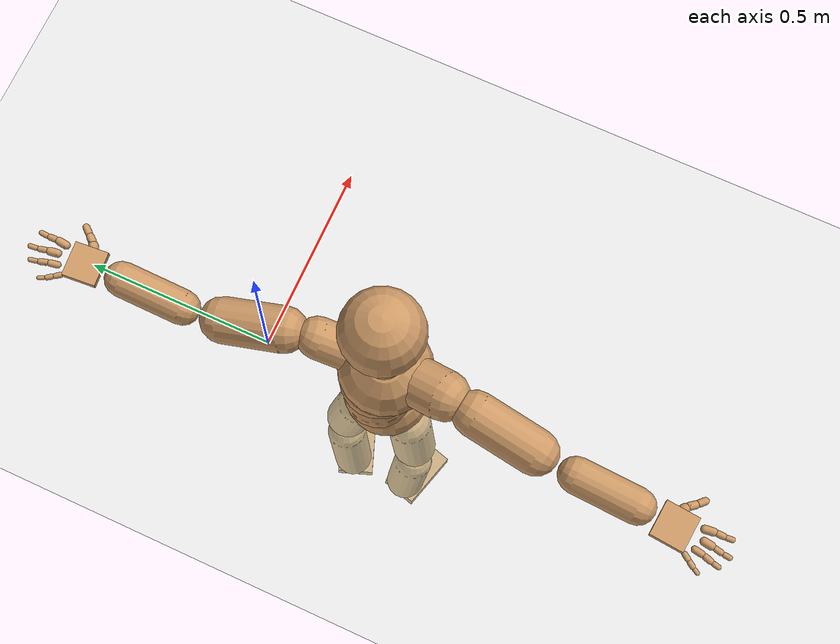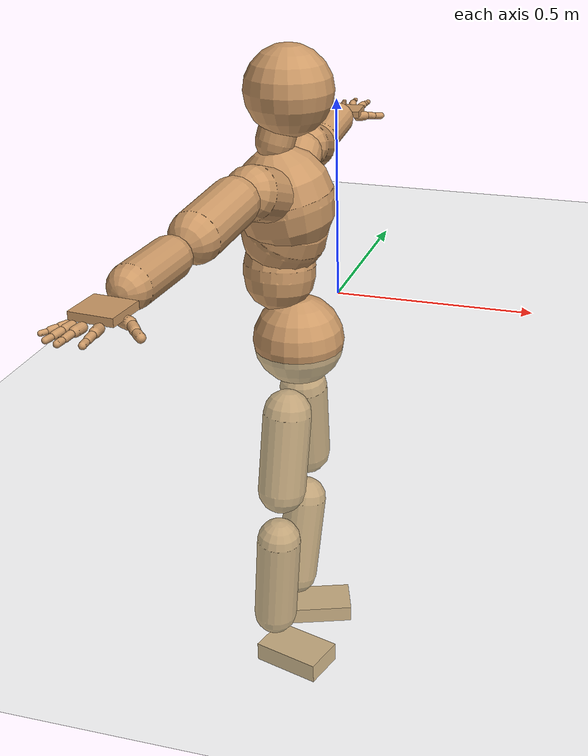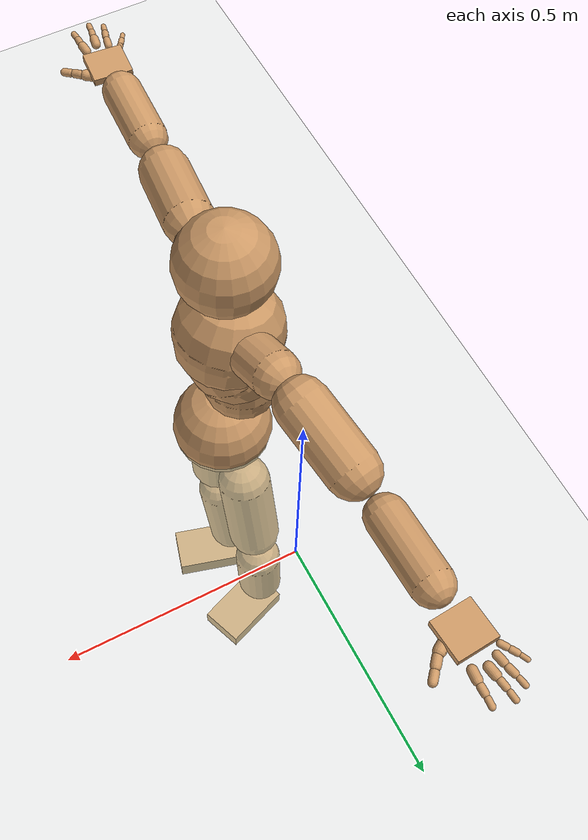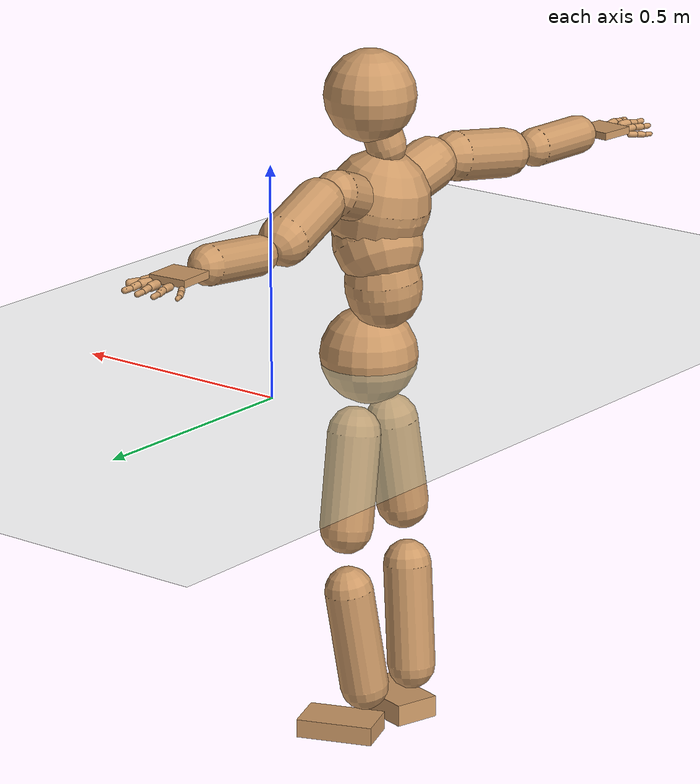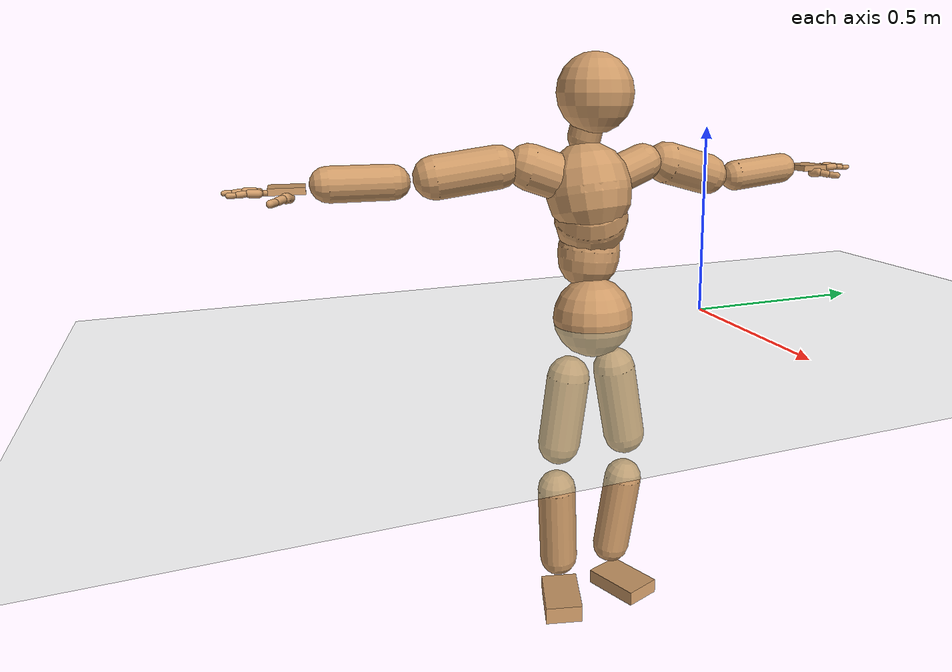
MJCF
<mujoco model="humanoid">
  <compiler coordinate="local" angle="radian"/>
  <default>
    <joint damping="0.0" armature="0.01" stiffness="0.0" limited="true"/>
    <geom conaffinity="1" condim="3" contype="7" margin="0.001" rgba="0.8 0.6 .4 1"/>
  </default>
  <asset>
    <texture type="skybox" builtin="gradient" rgb1=".4 .5 .6" rgb2="0 0 0" width="100" height="100"/>
    <texture builtin="flat" height="1278" mark="cross" markrgb="1 1 1" name="texgeom" random="0.01" rgb1="0.8 0.6 0.4" rgb2="0.8 0.6 0.4" type="cube" width="127"/>
    <texture builtin="checker" height="100" name="texplane" rgb1="0 0 0" rgb2="0.8 0.8 0.8" type="2d" width="100"/>
    <material name="MatPlane" reflectance="0.5" shininess="1" specular="1" texrepeat="60 60" texture="texplane"/>
    <material name="geom" texture="texgeom" texuniform="true"/>
  </asset>
  <worldbody>
    <light cutoff="100" diffuse="1 1 1" dir="-0 0 -1.3" directional="true" exponent="1" pos="0 0 1.3" specular=".1 .1 .1"/>
    <geom conaffinity="1" condim="3" name="floor" pos="0 0 0" rgba="0.8 0.9 0.8 1" size="100 100 .2" type="plane" material="MatPlane"/>
    <body name="Pelvis" pos="0.0017 -0.3304 0.0149">
      <freejoint name="Pelvis"/>
      <geom type="sphere" contype="1" conaffinity="1" density="500" size="0.1068" pos="0.0000 0.0000 0.0000" name="Pelvis"/>
      <body name="L_Hip" pos="-0.0126 0.058 -0.0886">
        <joint name="L_Hip_x" type="hinge" pos="0 0 0" axis="1 0 0" stiffness="800" damping="80" armature="0.02" range="-180.0000 180.0000"/>
        <joint name="L_Hip_y" type="hinge" pos="0 0 0" axis="0 1 0" stiffness="800" damping="80" armature="0.02" range="-180.0000 180.0000"/>
        <joint name="L_Hip_z" type="hinge" pos="0 0 0" axis="0 0 1" stiffness="800" damping="80" armature="0.02" range="-180.0000 180.0000"/>
        <geom type="capsule" contype="1" conaffinity="1" density="500" fromto="-0.0020 0.0117 -0.0680 -0.0079 0.0469 -0.2720" size="0.0578" name="L_Hip"/>
        <body name="L_Knee" pos="-0.0098 0.0587 -0.34">
          <joint name="L_Knee_x" type="hinge" pos="0 0 0" axis="1 0 0" stiffness="800" damping="80" armature="0.02" range="-180.0000 180.0000"/>
          <joint name="L_Knee_y" type="hinge" pos="0 0 0" axis="0 1 0" stiffness="800" damping="80" armature="0.02" range="-180.0000 180.0000"/>
          <joint name="L_Knee_z" type="hinge" pos="0 0 0" axis="0 0 1" stiffness="800" damping="80" armature="0.02" range="-180.0000 180.0000"/>
          <geom type="capsule" contype="1" conaffinity="1" density="500" fromto="-0.0068 -0.0094 -0.0747 -0.0272 -0.0375 -0.2988" size="0.0533" name="L_Knee"/>
          <body name="L_Ankle" pos="-0.034 -0.0469 -0.3735">
            <joint name="L_Ankle_x" type="hinge" pos="0 0 0" axis="1 0 0" stiffness="800" damping="80" armature="0.02" range="-180.0000 180.0000"/>
            <joint name="L_Ankle_y" type="hinge" pos="0 0 0" axis="0 1 0" stiffness="800" damping="80" armature="0.02" range="-180.0000 180.0000"/>
            <joint name="L_Ankle_z" type="hinge" pos="0 0 0" axis="0 0 1" stiffness="800" damping="80" armature="0.02" range="-180.0000 180.0000"/>
            <geom type="box" contype="1" conaffinity="1" density="500" pos="0.0618 0.0230 -0.0271" size="0.085 0.0513 0.0205" quat="0.9842 0.0000 0.0000 0.1773" name="L_Ankle"/>
            <body name="L_Toe" pos="0.1236 0.046 -0.0543">
              <joint name="L_Toe_x" type="hinge" pos="0 0 0" axis="1 0 0" stiffness="500" damping="50" armature="0.02" range="-180.0000 180.0000"/>
              <joint name="L_Toe_y" type="hinge" pos="0 0 0" axis="0 1 0" stiffness="500" damping="50" armature="0.02" range="-180.0000 180.0000"/>
              <joint name="L_Toe_z" type="hinge" pos="0 0 0" axis="0 0 1" stiffness="500" damping="50" armature="0.02" range="-180.0000 180.0000"/>
              <geom type="box" contype="1" conaffinity="1" density="500" pos="0.0000 0.0000 0.0280" size="0.001 0.0024 0.0011" quat="0.9834 0.0000 0.0000 0.1816" name="L_Toe"/>
            </body>
          </body>
        </body>
      </body>
      <body name="R_Hip" pos="-0.0063 -0.0597 -0.0988">
        <joint name="R_Hip_x" type="hinge" pos="0 0 0" axis="1 0 0" stiffness="800" damping="80" armature="0.02" range="-180.0000 180.0000"/>
        <joint name="R_Hip_y" type="hinge" pos="0 0 0" axis="0 1 0" stiffness="800" damping="80" armature="0.02" range="-180.0000 180.0000"/>
        <joint name="R_Hip_z" type="hinge" pos="0 0 0" axis="0 0 1" stiffness="800" damping="80" armature="0.02" range="-180.0000 180.0000"/>
        <geom type="capsule" contype="1" conaffinity="1" density="500" fromto="-0.0034 -0.0087 -0.0650 -0.0137 -0.0346 -0.2600" size="0.0576" name="R_Hip"/>
        <body name="R_Knee" pos="-0.0171 -0.0433 -0.325">
          <joint name="R_Knee_x" type="hinge" pos="0 0 0" axis="1 0 0" stiffness="800" damping="80" armature="0.02" range="-180.0000 180.0000"/>
          <joint name="R_Knee_y" type="hinge" pos="0 0 0" axis="0 1 0" stiffness="800" damping="80" armature="0.02" range="-180.0000 180.0000"/>
          <joint name="R_Knee_z" type="hinge" pos="0 0 0" axis="0 0 1" stiffness="800" damping="80" armature="0.02" range="-180.0000 180.0000"/>
          <geom type="capsule" contype="1" conaffinity="1" density="500" fromto="-0.0067 0.0036 -0.0770 -0.0267 0.0142 -0.3079" size="0.0532" name="R_Knee"/>
          <body name="R_Ankle" pos="-0.0334 0.0178 -0.3849">
            <joint name="R_Ankle_x" type="hinge" pos="0 0 0" axis="1 0 0" stiffness="800" damping="80" armature="0.02" range="-180.0000 180.0000"/>
            <joint name="R_Ankle_y" type="hinge" pos="0 0 0" axis="0 1 0" stiffness="800" damping="80" armature="0.02" range="-180.0000 180.0000"/>
            <joint name="R_Ankle_z" type="hinge" pos="0 0 0" axis="0 0 1" stiffness="800" damping="80" armature="0.02" range="-180.0000 180.0000"/>
            <geom type="box" contype="1" conaffinity="1" density="500" pos="0.0653 -0.0185 -0.0266" size="0.085 0.0513 0.0242" quat="0.9904 0.0000 0.0000 -0.1380" name="R_Ankle"/>
            <body name="R_Toe" pos="0.1305 -0.0371 -0.0533">
              <joint name="R_Toe_x" type="hinge" pos="0 0 0" axis="1 0 0" stiffness="500" damping="50" armature="0.02" range="-180.0000 180.0000"/>
              <joint name="R_Toe_y" type="hinge" pos="0 0 0" axis="0 1 0" stiffness="500" damping="50" armature="0.02" range="-180.0000 180.0000"/>
              <joint name="R_Toe_z" type="hinge" pos="0 0 0" axis="0 0 1" stiffness="500" damping="50" armature="0.02" range="-180.0000 180.0000"/>
              <geom type="box" contype="1" conaffinity="1" density="500" pos="0.0000 0.0000 0.0237" size="0.001 0.0024 0.0011" quat="0.9916 0.0000 0.0000 -0.1290" name="R_Toe"/>
            </body>
          </body>
        </body>
      </body>
      <body name="Torso" pos="-0.0457 0 0.0994">
        <joint name="Torso_x" type="hinge" pos="0 0 0" axis="1 0 0" stiffness="1000" damping="100" armature="0.02" range="-180.0000 180.0000"/>
        <joint name="Torso_y" type="hinge" pos="0 0 0" axis="0 1 0" stiffness="1000" damping="100" armature="0.02" range="-180.0000 180.0000"/>
        <joint name="Torso_z" type="hinge" pos="0 0 0" axis="0 0 1" stiffness="1000" damping="100" armature="0.02" range="-180.0000 180.0000"/>
        <geom type="capsule" contype="1" conaffinity="1" density="500" fromto="0.0021 0.0077 0.0801 0.0014 0.0051 0.0534" size="0.083" name="Torso"/>
        <body name="Spine" pos="0.0034 0.0129 0.1334">
          <joint name="Spine_x" type="hinge" pos="0 0 0" axis="1 0 0" stiffness="1000" damping="100" armature="0.02" range="-180.0000 180.0000"/>
          <joint name="Spine_y" type="hinge" pos="0 0 0" axis="0 1 0" stiffness="1000" damping="100" armature="0.02" range="-180.0000 180.0000"/>
          <joint name="Spine_z" type="hinge" pos="0 0 0" axis="0 0 1" stiffness="1000" damping="100" armature="0.02" range="-180.0000 180.0000"/>
          <geom type="capsule" contype="1" conaffinity="1" density="500" fromto="0.0169 -0.0072 0.0315 0.0112 -0.0048 0.0210" size="0.0973" name="Spine"/>
          <body name="Chest" pos="0.0281 -0.012 0.0525">
            <joint name="Chest_x" type="hinge" pos="0 0 0" axis="1 0 0" stiffness="1000" damping="100" armature="0.02" range="-180.0000 180.0000"/>
            <joint name="Chest_y" type="hinge" pos="0 0 0" axis="0 1 0" stiffness="1000" damping="100" armature="0.02" range="-180.0000 180.0000"/>
            <joint name="Chest_z" type="hinge" pos="0 0 0" axis="0 0 1" stiffness="1000" damping="100" armature="0.02" range="-180.0000 180.0000"/>
            <geom type="capsule" contype="1" conaffinity="1" density="500" fromto="-0.0107 -0.0038 0.0585 -0.0071 -0.0025 0.0390" size="0.1119" name="Chest"/>
            <body name="Neck" pos="-0.0341 -0.0117 0.1519">
              <joint name="Neck_x" type="hinge" pos="0 0 0" axis="1 0 0" stiffness="500" damping="50" armature="0.02" range="-180.0000 180.0000"/>
              <joint name="Neck_y" type="hinge" pos="0 0 0" axis="0 1 0" stiffness="500" damping="50" armature="0.02" range="-180.0000 180.0000"/>
              <joint name="Neck_z" type="hinge" pos="0 0 0" axis="0 0 1" stiffness="500" damping="50" armature="0.02" range="-180.0000 180.0000"/>
              <geom type="capsule" contype="1" conaffinity="1" density="500" fromto="0.0071 0.0047 0.0272 0.0282 0.0190 0.1089" size="0.0431" name="Neck"/>
              <body name="Head" pos="0.0353 0.0237 0.1361">
                <joint name="Head_x" type="hinge" pos="0 0 0" axis="1 0 0" stiffness="500" damping="50" armature="0.02" range="-180.0000 180.0000"/>
                <joint name="Head_y" type="hinge" pos="0 0 0" axis="0 1 0" stiffness="500" damping="50" armature="0.02" range="-180.0000 180.0000"/>
                <joint name="Head_z" type="hinge" pos="0 0 0" axis="0 0 1" stiffness="500" damping="50" armature="0.02" range="-180.0000 180.0000"/>
                <geom type="sphere" contype="1" conaffinity="1" density="500" size="0.0992" pos="0.0000 0.0000 0.0000" name="Head"/>
              </body>
            </body>
            <body name="L_Thorax" pos="-0.0085 0.0432 0.0697">
              <joint name="L_Thorax_x" type="hinge" pos="0 0 0" axis="1 0 0" stiffness="500" damping="50" armature="0.02" range="-180.0000 180.0000"/>
              <joint name="L_Thorax_y" type="hinge" pos="0 0 0" axis="0 1 0" stiffness="500" damping="50" armature="0.02" range="-180.0000 180.0000"/>
              <joint name="L_Thorax_z" type="hinge" pos="0 0 0" axis="0 0 1" stiffness="500" damping="50" armature="0.02" range="-180.0000 180.0000"/>
              <geom type="capsule" contype="1" conaffinity="1" density="500" fromto="-0.0039 0.0288 0.0101 -0.0155 0.1153 0.0405" size="0.0501" name="L_Thorax"/>
              <body name="L_Shoulder" pos="-0.0193 0.1441 0.0506">
                <joint name="L_Shoulder_x" type="hinge" pos="0 0 0" axis="1 0 0" stiffness="500" damping="50" armature="0.02" range="-180.0000 180.0000"/>
                <joint name="L_Shoulder_y" type="hinge" pos="0 0 0" axis="0 1 0" stiffness="500" damping="50" armature="0.02" range="-180.0000 180.0000"/>
                <joint name="L_Shoulder_z" type="hinge" pos="0 0 0" axis="0 0 1" stiffness="500" damping="50" armature="0.02" range="-180.0000 180.0000"/>
                <geom type="capsule" contype="1" conaffinity="1" density="500" fromto="-0.0094 0.0484 -0.0133 -0.0377 0.1936 -0.0531" size="0.0552" name="L_Shoulder"/>
                <body name="L_Elbow" pos="-0.0471 0.242 -0.0663">
                  <joint name="L_Elbow_x" type="hinge" pos="0 0 0" axis="1 0 0" stiffness="500" damping="50" armature="0.02" range="-720.0000 720.0000"/>
                  <joint name="L_Elbow_y" type="hinge" pos="0 0 0" axis="0 1 0" stiffness="500" damping="50" armature="0.02" range="-720.0000 720.0000"/>
                  <joint name="L_Elbow_z" type="hinge" pos="0 0 0" axis="0 0 1" stiffness="500" damping="50" armature="0.02" range="-720.0000 720.0000"/>
                  <geom type="capsule" contype="1" conaffinity="1" density="500" fromto="-0.0003 0.0511 0.0051 -0.0011 0.2045 0.0203" size="0.0422" name="L_Elbow"/>
                  <body name="L_Wrist" pos="-0.0014 0.2556 0.0254">
                    <joint name="L_Wrist_x" type="hinge" pos="0 0 0" axis="1 0 0" stiffness="300" damping="30" armature="0.02" range="-180.0000 180.0000"/>
                    <joint name="L_Wrist_y" type="hinge" pos="0 0 0" axis="0 1 0" stiffness="300" damping="30" armature="0.02" range="-180.0000 180.0000"/>
                    <joint name="L_Wrist_z" type="hinge" pos="0 0 0" axis="0 0 1" stiffness="300" damping="30" armature="0.02" range="-180.0000 180.0000"/>
                    <geom type="box" contype="1" conaffinity="1" density="500" pos="-0.0033 0.0426 -0.0057" size="0.0413 0.0427 0.0081" quat="0.7341 0.0000 0.0000 -0.6791" name="L_Wrist"/>
                    <body name="L_Index1" pos="0.0197 0.0996 -0.008">
                      <joint name="L_Index1_x" type="hinge" pos="0 0 0" axis="1 0 0" stiffness="100" damping="10" armature="0.02" range="-180.0000 180.0000"/>
                      <joint name="L_Index1_y" type="hinge" pos="0 0 0" axis="0 1 0" stiffness="100" damping="10" armature="0.02" range="-180.0000 180.0000"/>
                      <joint name="L_Index1_z" type="hinge" pos="0 0 0" axis="0 0 1" stiffness="100" damping="10" armature="0.02" range="-180.0000 180.0000"/>
                      <geom type="capsule" contype="1" conaffinity="1" density="500" fromto="0.0007 0.0063 0.0003 0.0027 0.0254 0.0014" size="0.0097" name="L_Index1"/>
                      <body name="L_Index2" pos="0.0034 0.0317 0.0017">
                        <joint name="L_Index2_x" type="hinge" pos="0 0 0" axis="1 0 0" stiffness="100" damping="10" armature="0.02" range="-180.0000 180.0000"/>
                        <joint name="L_Index2_y" type="hinge" pos="0 0 0" axis="0 1 0" stiffness="100" damping="10" armature="0.02" range="-180.0000 180.0000"/>
                        <joint name="L_Index2_z" type="hinge" pos="0 0 0" axis="0 0 1" stiffness="100" damping="10" armature="0.02" range="-180.0000 180.0000"/>
                        <geom type="capsule" contype="1" conaffinity="1" density="500" fromto="-0.0001 0.0044 -0.0005 -0.0003 0.0178 -0.0020" size="0.0077" name="L_Index2"/>
                        <body name="L_Index3" pos="-0.0004 0.0222 -0.0025">
                          <joint name="L_Index3_x" type="hinge" pos="0 0 0" axis="1 0 0" stiffness="100" damping="10" armature="0.02" range="-180.0000 180.0000"/>
                          <joint name="L_Index3_y" type="hinge" pos="0 0 0" axis="0 1 0" stiffness="100" damping="10" armature="0.02" range="-180.0000 180.0000"/>
                          <joint name="L_Index3_z" type="hinge" pos="0 0 0" axis="0 0 1" stiffness="100" damping="10" armature="0.02" range="-180.0000 180.0000"/>
                          <geom type="capsule" contype="1" conaffinity="1" density="500" fromto="0.0003 0.0048 -0.0001 0.0013 0.0194 -0.0004" size="0.0065" name="L_Index3"/>
                        </body>
                      </body>
                    </body>
                    <body name="L_Middle1" pos="-0.005 0.1078 -0.0055">
                      <joint name="L_Middle1_x" type="hinge" pos="0 0 0" axis="1 0 0" stiffness="100" damping="10" armature="0.02" range="-180.0000 180.0000"/>
                      <joint name="L_Middle1_y" type="hinge" pos="0 0 0" axis="0 1 0" stiffness="100" damping="10" armature="0.02" range="-180.0000 180.0000"/>
                      <joint name="L_Middle1_z" type="hinge" pos="0 0 0" axis="0 0 1" stiffness="100" damping="10" armature="0.02" range="-180.0000 180.0000"/>
                      <geom type="capsule" contype="1" conaffinity="1" density="500" fromto="-0.0009 0.0061 0.0001 -0.0036 0.0243 0.0004" size="0.0098" name="L_Middle1"/>
                      <body name="L_Middle2" pos="-0.0045 0.0304 0.0005">
                        <joint name="L_Middle2_x" type="hinge" pos="0 0 0" axis="1 0 0" stiffness="100" damping="10" armature="0.02" range="-180.0000 180.0000"/>
                        <joint name="L_Middle2_y" type="hinge" pos="0 0 0" axis="0 1 0" stiffness="100" damping="10" armature="0.02" range="-180.0000 180.0000"/>
                        <joint name="L_Middle2_z" type="hinge" pos="0 0 0" axis="0 0 1" stiffness="100" damping="10" armature="0.02" range="-180.0000 180.0000"/>
                        <geom type="capsule" contype="1" conaffinity="1" density="500" fromto="-0.0009 0.0046 -0.0005 -0.0035 0.0184 -0.0019" size="0.0072" name="L_Middle2"/>
                        <body name="L_Middle3" pos="-0.0044 0.023 -0.0023">
                          <joint name="L_Middle3_x" type="hinge" pos="0 0 0" axis="1 0 0" stiffness="100" damping="10" armature="0.02" range="-180.0000 180.0000"/>
                          <joint name="L_Middle3_y" type="hinge" pos="0 0 0" axis="0 1 0" stiffness="100" damping="10" armature="0.02" range="-180.0000 180.0000"/>
                          <joint name="L_Middle3_z" type="hinge" pos="0 0 0" axis="0 0 1" stiffness="100" damping="10" armature="0.02" range="-180.0000 180.0000"/>
                          <geom type="capsule" contype="1" conaffinity="1" density="500" fromto="-0.0005 0.0050 -0.0001 -0.0019 0.0200 -0.0003" size="0.0062" name="L_Middle3"/>
                        </body>
                      </body>
                    </body>
                    <body name="L_Pinky1" pos="-0.0454 0.0835 -0.0148">
                      <joint name="L_Pinky1_x" type="hinge" pos="0 0 0" axis="1 0 0" stiffness="100" damping="10" armature="0.02" range="-180.0000 180.0000"/>
                      <joint name="L_Pinky1_y" type="hinge" pos="0 0 0" axis="0 1 0" stiffness="100" damping="10" armature="0.02" range="-180.0000 180.0000"/>
                      <joint name="L_Pinky1_z" type="hinge" pos="0 0 0" axis="0 0 1" stiffness="100" damping="10" armature="0.02" range="-180.0000 180.0000"/>
                      <geom type="capsule" contype="1" conaffinity="1" density="500" fromto="-0.0023 0.0033 -0.0003 -0.0093 0.0133 -0.0013" size="0.0069" name="L_Pinky1"/>
                      <body name="L_Pinky2" pos="-0.0116 0.0166 -0.0016">
                        <joint name="L_Pinky2_x" type="hinge" pos="0 0 0" axis="1 0 0" stiffness="100" damping="10" armature="0.02" range="-180.0000 180.0000"/>
                        <joint name="L_Pinky2_y" type="hinge" pos="0 0 0" axis="0 1 0" stiffness="100" damping="10" armature="0.02" range="-180.0000 180.0000"/>
                        <joint name="L_Pinky2_z" type="hinge" pos="0 0 0" axis="0 0 1" stiffness="100" damping="10" armature="0.02" range="-180.0000 180.0000"/>
                        <geom type="capsule" contype="1" conaffinity="1" density="500" fromto="-0.0021 0.0032 -0.0004 -0.0085 0.0129 -0.0015" size="0.0066" name="L_Pinky2"/>
                        <body name="L_Pinky3" pos="-0.0106 0.0161 -0.0019">
                          <joint name="L_Pinky3_x" type="hinge" pos="0 0 0" axis="1 0 0" stiffness="100" damping="10" armature="0.02" range="-180.0000 180.0000"/>
                          <joint name="L_Pinky3_y" type="hinge" pos="0 0 0" axis="0 1 0" stiffness="100" damping="10" armature="0.02" range="-180.0000 180.0000"/>
                          <joint name="L_Pinky3_z" type="hinge" pos="0 0 0" axis="0 0 1" stiffness="100" damping="10" armature="0.02" range="-180.0000 180.0000"/>
                          <geom type="capsule" contype="1" conaffinity="1" density="500" fromto="-0.0017 0.0036 0.0000 -0.0069 0.0145 0.0001" size="0.0049" name="L_Pinky3"/>
                        </body>
                      </body>
                    </body>
                    <body name="L_Ring1" pos="-0.0291 0.0964 -0.009">
                      <joint name="L_Ring1_x" type="hinge" pos="0 0 0" axis="1 0 0" stiffness="100" damping="10" armature="0.02" range="-180.0000 180.0000"/>
                      <joint name="L_Ring1_y" type="hinge" pos="0 0 0" axis="0 1 0" stiffness="100" damping="10" armature="0.02" range="-180.0000 180.0000"/>
                      <joint name="L_Ring1_z" type="hinge" pos="0 0 0" axis="0 0 1" stiffness="100" damping="10" armature="0.02" range="-180.0000 180.0000"/>
                      <geom type="capsule" contype="1" conaffinity="1" density="500" fromto="-0.0010 0.0056 0.0001 -0.0040 0.0226 0.0004" size="0.0083" name="L_Ring1"/>
                      <body name="L_Ring2" pos="-0.005 0.0282 0.0005">
                        <joint name="L_Ring2_x" type="hinge" pos="0 0 0" axis="1 0 0" stiffness="100" damping="10" armature="0.02" range="-180.0000 180.0000"/>
                        <joint name="L_Ring2_y" type="hinge" pos="0 0 0" axis="0 1 0" stiffness="100" damping="10" armature="0.02" range="-180.0000 180.0000"/>
                        <joint name="L_Ring2_z" type="hinge" pos="0 0 0" axis="0 0 1" stiffness="100" damping="10" armature="0.02" range="-180.0000 180.0000"/>
                        <geom type="capsule" contype="1" conaffinity="1" density="500" fromto="-0.0013 0.0045 -0.0005 -0.0053 0.0182 -0.0018" size="0.0077" name="L_Ring2"/>
                        <body name="L_Ring3" pos="-0.0067 0.0227 -0.0023">
                          <joint name="L_Ring3_x" type="hinge" pos="0 0 0" axis="1 0 0" stiffness="100" damping="10" armature="0.02" range="-180.0000 180.0000"/>
                          <joint name="L_Ring3_y" type="hinge" pos="0 0 0" axis="0 1 0" stiffness="100" damping="10" armature="0.02" range="-180.0000 180.0000"/>
                          <joint name="L_Ring3_z" type="hinge" pos="0 0 0" axis="0 0 1" stiffness="100" damping="10" armature="0.02" range="-180.0000 180.0000"/>
                          <geom type="capsule" contype="1" conaffinity="1" density="500" fromto="-0.0009 0.0049 -0.0001 -0.0037 0.0198 -0.0002" size="0.0059" name="L_Ring3"/>
                        </body>
                      </body>
                    </body>
                    <body name="L_Thumb1" pos="0.0266 0.0387 -0.0197">
                      <joint name="L_Thumb1_x" type="hinge" pos="0 0 0" axis="1 0 0" stiffness="100" damping="10" armature="0.02" range="-180.0000 180.0000"/>
                      <joint name="L_Thumb1_y" type="hinge" pos="0 0 0" axis="0 1 0" stiffness="100" damping="10" armature="0.02" range="-180.0000 180.0000"/>
                      <joint name="L_Thumb1_z" type="hinge" pos="0 0 0" axis="0 0 1" stiffness="100" damping="10" armature="0.02" range="-180.0000 180.0000"/>
                      <geom type="capsule" contype="1" conaffinity="1" density="500" fromto="0.0052 0.0031 0.0004 0.0208 0.0124 0.0015" size="0.0123" name="L_Thumb1"/>
                      <body name="L_Thumb2" pos="0.0261 0.0155 0.0019">
                        <joint name="L_Thumb2_x" type="hinge" pos="0 0 0" axis="1 0 0" stiffness="100" damping="10" armature="0.02" range="-180.0000 180.0000"/>
                        <joint name="L_Thumb2_y" type="hinge" pos="0 0 0" axis="0 1 0" stiffness="100" damping="10" armature="0.02" range="-180.0000 180.0000"/>
                        <joint name="L_Thumb2_z" type="hinge" pos="0 0 0" axis="0 0 1" stiffness="100" damping="10" armature="0.02" range="-180.0000 180.0000"/>
                        <geom type="capsule" contype="1" conaffinity="1" density="500" fromto="0.0033 0.0038 -0.0010 0.0130 0.0153 -0.0038" size="0.0097" name="L_Thumb2"/>
                        <body name="L_Thumb3" pos="0.0163 0.0191 -0.0048">
                          <joint name="L_Thumb3_x" type="hinge" pos="0 0 0" axis="1 0 0" stiffness="100" damping="10" armature="0.02" range="-180.0000 180.0000"/>
                          <joint name="L_Thumb3_y" type="hinge" pos="0 0 0" axis="0 1 0" stiffness="100" damping="10" armature="0.02" range="-180.0000 180.0000"/>
                          <joint name="L_Thumb3_z" type="hinge" pos="0 0 0" axis="0 0 1" stiffness="100" damping="10" armature="0.02" range="-180.0000 180.0000"/>
                          <geom type="capsule" contype="1" conaffinity="1" density="500" fromto="0.0037 0.0042 -0.0006 0.0146 0.0169 -0.0022" size="0.0088" name="L_Thumb3"/>
                        </body>
                      </body>
                    </body>
                  </body>
                </body>
              </body>
            </body>
            <body name="R_Thorax" pos="-0.0108 -0.0503 0.071">
              <joint name="R_Thorax_x" type="hinge" pos="0 0 0" axis="1 0 0" stiffness="500" damping="50" armature="0.02" range="-180.0000 180.0000"/>
              <joint name="R_Thorax_y" type="hinge" pos="0 0 0" axis="0 1 0" stiffness="500" damping="50" armature="0.02" range="-180.0000 180.0000"/>
              <joint name="R_Thorax_z" type="hinge" pos="0 0 0" axis="0 0 1" stiffness="500" damping="50" armature="0.02" range="-180.0000 180.0000"/>
              <geom type="capsule" contype="1" conaffinity="1" density="500" fromto="-0.0041 -0.0264 0.0096 -0.0165 -0.1057 0.0385" size="0.0594" name="R_Thorax"/>
              <body name="R_Shoulder" pos="-0.0207 -0.1322 0.0481">
                <joint name="R_Shoulder_x" type="hinge" pos="0 0 0" axis="1 0 0" stiffness="500" damping="50" armature="0.02" range="-180.0000 180.0000"/>
                <joint name="R_Shoulder_y" type="hinge" pos="0 0 0" axis="0 1 0" stiffness="500" damping="50" armature="0.02" range="-180.0000 180.0000"/>
                <joint name="R_Shoulder_z" type="hinge" pos="0 0 0" axis="0 0 1" stiffness="500" damping="50" armature="0.02" range="-180.0000 180.0000"/>
                <geom type="capsule" contype="1" conaffinity="1" density="500" fromto="-0.0062 -0.0520 -0.0071 -0.0247 -0.2081 -0.0286" size="0.0544" name="R_Shoulder"/>
                <body name="R_Elbow" pos="-0.0309 -0.2601 -0.0357">
                  <joint name="R_Elbow_x" type="hinge" pos="0 0 0" axis="1 0 0" stiffness="500" damping="50" armature="0.02" range="-720.0000 720.0000"/>
                  <joint name="R_Elbow_y" type="hinge" pos="0 0 0" axis="0 1 0" stiffness="500" damping="50" armature="0.02" range="-720.0000 720.0000"/>
                  <joint name="R_Elbow_z" type="hinge" pos="0 0 0" axis="0 0 1" stiffness="500" damping="50" armature="0.02" range="-720.0000 720.0000"/>
                  <geom type="capsule" contype="1" conaffinity="1" density="500" fromto="-0.0026 -0.0496 -0.0001 -0.0103 -0.1984 -0.0003" size="0.0432" name="R_Elbow"/>
                  <body name="R_Wrist" pos="-0.0129 -0.248 -0.0004">
                    <joint name="R_Wrist_x" type="hinge" pos="0 0 0" axis="1 0 0" stiffness="300" damping="30" armature="0.02" range="-180.0000 180.0000"/>
                    <joint name="R_Wrist_y" type="hinge" pos="0 0 0" axis="0 1 0" stiffness="300" damping="30" armature="0.02" range="-180.0000 180.0000"/>
                    <joint name="R_Wrist_z" type="hinge" pos="0 0 0" axis="0 0 1" stiffness="300" damping="30" armature="0.02" range="-180.0000 180.0000"/>
                    <geom type="box" contype="1" conaffinity="1" density="500" pos="-0.0039 -0.0424 -0.0075" size="0.0413 0.0437 0.0082" quat="0.7384 0.0000 0.0000 0.6743" name="R_Wrist"/>
                    <body name="R_Index1" pos="0.0187 -0.0992 -0.0116">
                      <joint name="R_Index1_x" type="hinge" pos="0 0 0" axis="1 0 0" stiffness="100" damping="10" armature="0.02" range="-180.0000 180.0000"/>
                      <joint name="R_Index1_y" type="hinge" pos="0 0 0" axis="0 1 0" stiffness="100" damping="10" armature="0.02" range="-180.0000 180.0000"/>
                      <joint name="R_Index1_z" type="hinge" pos="0 0 0" axis="0 0 1" stiffness="100" damping="10" armature="0.02" range="-180.0000 180.0000"/>
                      <geom type="capsule" contype="1" conaffinity="1" density="500" fromto="0.0007 -0.0063 0.0003 0.0027 -0.0254 0.0014" size="0.0097" name="R_Index1"/>
                      <body name="R_Index2" pos="0.0034 -0.0317 0.0017">
                        <joint name="R_Index2_x" type="hinge" pos="0 0 0" axis="1 0 0" stiffness="100" damping="10" armature="0.02" range="-180.0000 180.0000"/>
                        <joint name="R_Index2_y" type="hinge" pos="0 0 0" axis="0 1 0" stiffness="100" damping="10" armature="0.02" range="-180.0000 180.0000"/>
                        <joint name="R_Index2_z" type="hinge" pos="0 0 0" axis="0 0 1" stiffness="100" damping="10" armature="0.02" range="-180.0000 180.0000"/>
                        <geom type="capsule" contype="1" conaffinity="1" density="500" fromto="-0.0001 -0.0044 -0.0005 -0.0003 -0.0178 -0.0020" size="0.0077" name="R_Index2"/>
                        <body name="R_Index3" pos="-0.0004 -0.0222 -0.0025">
                          <joint name="R_Index3_x" type="hinge" pos="0 0 0" axis="1 0 0" stiffness="100" damping="10" armature="0.02" range="-180.0000 180.0000"/>
                          <joint name="R_Index3_y" type="hinge" pos="0 0 0" axis="0 1 0" stiffness="100" damping="10" armature="0.02" range="-180.0000 180.0000"/>
                          <joint name="R_Index3_z" type="hinge" pos="0 0 0" axis="0 0 1" stiffness="100" damping="10" armature="0.02" range="-180.0000 180.0000"/>
                          <geom type="capsule" contype="1" conaffinity="1" density="500" fromto="0.0003 -0.0040 -0.0001 0.0013 -0.0162 -0.0004" size="0.0068" name="R_Index3"/>
                        </body>
                      </body>
                    </body>
                    <body name="R_Middle1" pos="-0.0061 -0.1074 -0.0091">
                      <joint name="R_Middle1_x" type="hinge" pos="0 0 0" axis="1 0 0" stiffness="100" damping="10" armature="0.02" range="-180.0000 180.0000"/>
                      <joint name="R_Middle1_y" type="hinge" pos="0 0 0" axis="0 1 0" stiffness="100" damping="10" armature="0.02" range="-180.0000 180.0000"/>
                      <joint name="R_Middle1_z" type="hinge" pos="0 0 0" axis="0 0 1" stiffness="100" damping="10" armature="0.02" range="-180.0000 180.0000"/>
                      <geom type="capsule" contype="1" conaffinity="1" density="500" fromto="-0.0009 -0.0061 0.0001 -0.0036 -0.0243 0.0004" size="0.0098" name="R_Middle1"/>
                      <body name="R_Middle2" pos="-0.0045 -0.0304 0.0005">
                        <joint name="R_Middle2_x" type="hinge" pos="0 0 0" axis="1 0 0" stiffness="100" damping="10" armature="0.02" range="-180.0000 180.0000"/>
                        <joint name="R_Middle2_y" type="hinge" pos="0 0 0" axis="0 1 0" stiffness="100" damping="10" armature="0.02" range="-180.0000 180.0000"/>
                        <joint name="R_Middle2_z" type="hinge" pos="0 0 0" axis="0 0 1" stiffness="100" damping="10" armature="0.02" range="-180.0000 180.0000"/>
                        <geom type="capsule" contype="1" conaffinity="1" density="500" fromto="-0.0009 -0.0046 -0.0005 -0.0035 -0.0184 -0.0019" size="0.0072" name="R_Middle2"/>
                        <body name="R_Middle3" pos="-0.0044 -0.023 -0.0023">
                          <joint name="R_Middle3_x" type="hinge" pos="0 0 0" axis="1 0 0" stiffness="100" damping="10" armature="0.02" range="-180.0000 180.0000"/>
                          <joint name="R_Middle3_y" type="hinge" pos="0 0 0" axis="0 1 0" stiffness="100" damping="10" armature="0.02" range="-180.0000 180.0000"/>
                          <joint name="R_Middle3_z" type="hinge" pos="0 0 0" axis="0 0 1" stiffness="100" damping="10" armature="0.02" range="-180.0000 180.0000"/>
                          <geom type="capsule" contype="1" conaffinity="1" density="500" fromto="-0.0005 -0.0042 -0.0001 -0.0019 -0.0168 -0.0003" size="0.0065" name="R_Middle3"/>
                        </body>
                      </body>
                    </body>
                    <body name="R_Pinky1" pos="-0.0465 -0.0831 -0.0184">
                      <joint name="R_Pinky1_x" type="hinge" pos="0 0 0" axis="1 0 0" stiffness="100" damping="10" armature="0.02" range="-180.0000 180.0000"/>
                      <joint name="R_Pinky1_y" type="hinge" pos="0 0 0" axis="0 1 0" stiffness="100" damping="10" armature="0.02" range="-180.0000 180.0000"/>
                      <joint name="R_Pinky1_z" type="hinge" pos="0 0 0" axis="0 0 1" stiffness="100" damping="10" armature="0.02" range="-180.0000 180.0000"/>
                      <geom type="capsule" contype="1" conaffinity="1" density="500" fromto="-0.0023 -0.0033 -0.0003 -0.0092 -0.0133 -0.0013" size="0.0069" name="R_Pinky1"/>
                      <body name="R_Pinky2" pos="-0.0116 -0.0166 -0.0016">
                        <joint name="R_Pinky2_x" type="hinge" pos="0 0 0" axis="1 0 0" stiffness="100" damping="10" armature="0.02" range="-180.0000 180.0000"/>
                        <joint name="R_Pinky2_y" type="hinge" pos="0 0 0" axis="0 1 0" stiffness="100" damping="10" armature="0.02" range="-180.0000 180.0000"/>
                        <joint name="R_Pinky2_z" type="hinge" pos="0 0 0" axis="0 0 1" stiffness="100" damping="10" armature="0.02" range="-180.0000 180.0000"/>
                        <geom type="capsule" contype="1" conaffinity="1" density="500" fromto="-0.0021 -0.0032 -0.0004 -0.0085 -0.0129 -0.0015" size="0.0066" name="R_Pinky2"/>
                        <body name="R_Pinky3" pos="-0.0106 -0.0161 -0.0019">
                          <joint name="R_Pinky3_x" type="hinge" pos="0 0 0" axis="1 0 0" stiffness="100" damping="10" armature="0.02" range="-180.0000 180.0000"/>
                          <joint name="R_Pinky3_y" type="hinge" pos="0 0 0" axis="0 1 0" stiffness="100" damping="10" armature="0.02" range="-180.0000 180.0000"/>
                          <joint name="R_Pinky3_z" type="hinge" pos="0 0 0" axis="0 0 1" stiffness="100" damping="10" armature="0.02" range="-180.0000 180.0000"/>
                          <geom type="capsule" contype="1" conaffinity="1" density="500" fromto="-0.0017 -0.0028 0.0000 -0.0069 -0.0113 0.0001" size="0.0052" name="R_Pinky3"/>
                        </body>
                      </body>
                    </body>
                    <body name="R_Ring1" pos="-0.0302 -0.096 -0.0126">
                      <joint name="R_Ring1_x" type="hinge" pos="0 0 0" axis="1 0 0" stiffness="100" damping="10" armature="0.02" range="-180.0000 180.0000"/>
                      <joint name="R_Ring1_y" type="hinge" pos="0 0 0" axis="0 1 0" stiffness="100" damping="10" armature="0.02" range="-180.0000 180.0000"/>
                      <joint name="R_Ring1_z" type="hinge" pos="0 0 0" axis="0 0 1" stiffness="100" damping="10" armature="0.02" range="-180.0000 180.0000"/>
                      <geom type="capsule" contype="1" conaffinity="1" density="500" fromto="-0.0010 -0.0056 0.0001 -0.0040 -0.0226 0.0004" size="0.0083" name="R_Ring1"/>
                      <body name="R_Ring2" pos="-0.005 -0.0282 0.0005">
                        <joint name="R_Ring2_x" type="hinge" pos="0 0 0" axis="1 0 0" stiffness="100" damping="10" armature="0.02" range="-180.0000 180.0000"/>
                        <joint name="R_Ring2_y" type="hinge" pos="0 0 0" axis="0 1 0" stiffness="100" damping="10" armature="0.02" range="-180.0000 180.0000"/>
                        <joint name="R_Ring2_z" type="hinge" pos="0 0 0" axis="0 0 1" stiffness="100" damping="10" armature="0.02" range="-180.0000 180.0000"/>
                        <geom type="capsule" contype="1" conaffinity="1" density="500" fromto="-0.0013 -0.0045 -0.0005 -0.0053 -0.0182 -0.0018" size="0.0077" name="R_Ring2"/>
                        <body name="R_Ring3" pos="-0.0067 -0.0227 -0.0023">
                          <joint name="R_Ring3_x" type="hinge" pos="0 0 0" axis="1 0 0" stiffness="100" damping="10" armature="0.02" range="-180.0000 180.0000"/>
                          <joint name="R_Ring3_y" type="hinge" pos="0 0 0" axis="0 1 0" stiffness="100" damping="10" armature="0.02" range="-180.0000 180.0000"/>
                          <joint name="R_Ring3_z" type="hinge" pos="0 0 0" axis="0 0 1" stiffness="100" damping="10" armature="0.02" range="-180.0000 180.0000"/>
                          <geom type="capsule" contype="1" conaffinity="1" density="500" fromto="-0.0009 -0.0041 -0.0001 -0.0037 -0.0166 -0.0002" size="0.0062" name="R_Ring3"/>
                        </body>
                      </body>
                    </body>
                    <body name="R_Thumb1" pos="0.0255 -0.0383 -0.0233">
                      <joint name="R_Thumb1_x" type="hinge" pos="0 0 0" axis="1 0 0" stiffness="100" damping="10" armature="0.02" range="-180.0000 180.0000"/>
                      <joint name="R_Thumb1_y" type="hinge" pos="0 0 0" axis="0 1 0" stiffness="100" damping="10" armature="0.02" range="-180.0000 180.0000"/>
                      <joint name="R_Thumb1_z" type="hinge" pos="0 0 0" axis="0 0 1" stiffness="100" damping="10" armature="0.02" range="-180.0000 180.0000"/>
                      <geom type="capsule" contype="1" conaffinity="1" density="500" fromto="0.0052 -0.0031 0.0004 0.0208 -0.0124 0.0015" size="0.0123" name="R_Thumb1"/>
                      <body name="R_Thumb2" pos="0.0261 -0.0155 0.0019">
                        <joint name="R_Thumb2_x" type="hinge" pos="0 0 0" axis="1 0 0" stiffness="100" damping="10" armature="0.02" range="-180.0000 180.0000"/>
                        <joint name="R_Thumb2_y" type="hinge" pos="0 0 0" axis="0 1 0" stiffness="100" damping="10" armature="0.02" range="-180.0000 180.0000"/>
                        <joint name="R_Thumb2_z" type="hinge" pos="0 0 0" axis="0 0 1" stiffness="100" damping="10" armature="0.02" range="-180.0000 180.0000"/>
                        <geom type="capsule" contype="1" conaffinity="1" density="500" fromto="0.0033 -0.0038 -0.0010 0.0130 -0.0153 -0.0038" size="0.0097" name="R_Thumb2"/>
                        <body name="R_Thumb3" pos="0.0163 -0.0191 -0.0048">
                          <joint name="R_Thumb3_x" type="hinge" pos="0 0 0" axis="1 0 0" stiffness="100" damping="10" armature="0.02" range="-180.0000 180.0000"/>
                          <joint name="R_Thumb3_y" type="hinge" pos="0 0 0" axis="0 1 0" stiffness="100" damping="10" armature="0.02" range="-180.0000 180.0000"/>
                          <joint name="R_Thumb3_z" type="hinge" pos="0 0 0" axis="0 0 1" stiffness="100" damping="10" armature="0.02" range="-180.0000 180.0000"/>
                          <geom type="capsule" contype="1" conaffinity="1" density="500" fromto="0.0037 -0.0034 -0.0006 0.0146 -0.0137 -0.0022" size="0.009" name="R_Thumb3"/>
                        </body>
                      </body>
                    </body>
                  </body>
                </body>
              </body>
            </body>
          </body>
        </body>
      </body>
    </body>
  </worldbody>
  <actuator>
    <motor name="L_Hip_x" joint="L_Hip_x" gear="500"/>
    <motor name="L_Hip_y" joint="L_Hip_y" gear="500"/>
    <motor name="L_Hip_z" joint="L_Hip_z" gear="500"/>
    <motor name="L_Knee_x" joint="L_Knee_x" gear="500"/>
    <motor name="L_Knee_y" joint="L_Knee_y" gear="500"/>
    <motor name="L_Knee_z" joint="L_Knee_z" gear="500"/>
    <motor name="L_Ankle_x" joint="L_Ankle_x" gear="500"/>
    <motor name="L_Ankle_y" joint="L_Ankle_y" gear="500"/>
    <motor name="L_Ankle_z" joint="L_Ankle_z" gear="500"/>
    <motor name="L_Toe_x" joint="L_Toe_x" gear="500"/>
    <motor name="L_Toe_y" joint="L_Toe_y" gear="500"/>
    <motor name="L_Toe_z" joint="L_Toe_z" gear="500"/>
    <motor name="R_Hip_x" joint="R_Hip_x" gear="500"/>
    <motor name="R_Hip_y" joint="R_Hip_y" gear="500"/>
    <motor name="R_Hip_z" joint="R_Hip_z" gear="500"/>
    <motor name="R_Knee_x" joint="R_Knee_x" gear="500"/>
    <motor name="R_Knee_y" joint="R_Knee_y" gear="500"/>
    <motor name="R_Knee_z" joint="R_Knee_z" gear="500"/>
    <motor name="R_Ankle_x" joint="R_Ankle_x" gear="500"/>
    <motor name="R_Ankle_y" joint="R_Ankle_y" gear="500"/>
    <motor name="R_Ankle_z" joint="R_Ankle_z" gear="500"/>
    <motor name="R_Toe_x" joint="R_Toe_x" gear="500"/>
    <motor name="R_Toe_y" joint="R_Toe_y" gear="500"/>
    <motor name="R_Toe_z" joint="R_Toe_z" gear="500"/>
    <motor name="Torso_x" joint="Torso_x" gear="500"/>
    <motor name="Torso_y" joint="Torso_y" gear="500"/>
    <motor name="Torso_z" joint="Torso_z" gear="500"/>
    <motor name="Spine_x" joint="Spine_x" gear="500"/>
    <motor name="Spine_y" joint="Spine_y" gear="500"/>
    <motor name="Spine_z" joint="Spine_z" gear="500"/>
    <motor name="Chest_x" joint="Chest_x" gear="500"/>
    <motor name="Chest_y" joint="Chest_y" gear="500"/>
    <motor name="Chest_z" joint="Chest_z" gear="500"/>
    <motor name="Neck_x" joint="Neck_x" gear="500"/>
    <motor name="Neck_y" joint="Neck_y" gear="500"/>
    <motor name="Neck_z" joint="Neck_z" gear="500"/>
    <motor name="Head_x" joint="Head_x" gear="500"/>
    <motor name="Head_y" joint="Head_y" gear="500"/>
    <motor name="Head_z" joint="Head_z" gear="500"/>
    <motor name="L_Thorax_x" joint="L_Thorax_x" gear="500"/>
    <motor name="L_Thorax_y" joint="L_Thorax_y" gear="500"/>
    <motor name="L_Thorax_z" joint="L_Thorax_z" gear="500"/>
    <motor name="L_Shoulder_x" joint="L_Shoulder_x" gear="500"/>
    <motor name="L_Shoulder_y" joint="L_Shoulder_y" gear="500"/>
    <motor name="L_Shoulder_z" joint="L_Shoulder_z" gear="500"/>
    <motor name="L_Elbow_x" joint="L_Elbow_x" gear="500"/>
    <motor name="L_Elbow_y" joint="L_Elbow_y" gear="500"/>
    <motor name="L_Elbow_z" joint="L_Elbow_z" gear="500"/>
    <motor name="L_Wrist_x" joint="L_Wrist_x" gear="500"/>
    <motor name="L_Wrist_y" joint="L_Wrist_y" gear="500"/>
    <motor name="L_Wrist_z" joint="L_Wrist_z" gear="500"/>
    <motor name="L_Index1_x" joint="L_Index1_x" gear="500"/>
    <motor name="L_Index1_y" joint="L_Index1_y" gear="500"/>
    <motor name="L_Index1_z" joint="L_Index1_z" gear="500"/>
    <motor name="L_Index2_x" joint="L_Index2_x" gear="500"/>
    <motor name="L_Index2_y" joint="L_Index2_y" gear="500"/>
    <motor name="L_Index2_z" joint="L_Index2_z" gear="500"/>
    <motor name="L_Index3_x" joint="L_Index3_x" gear="500"/>
    <motor name="L_Index3_y" joint="L_Index3_y" gear="500"/>
    <motor name="L_Index3_z" joint="L_Index3_z" gear="500"/>
    <motor name="L_Middle1_x" joint="L_Middle1_x" gear="500"/>
    <motor name="L_Middle1_y" joint="L_Middle1_y" gear="500"/>
    <motor name="L_Middle1_z" joint="L_Middle1_z" gear="500"/>
    <motor name="L_Middle2_x" joint="L_Middle2_x" gear="500"/>
    <motor name="L_Middle2_y" joint="L_Middle2_y" gear="500"/>
    <motor name="L_Middle2_z" joint="L_Middle2_z" gear="500"/>
    <motor name="L_Middle3_x" joint="L_Middle3_x" gear="500"/>
    <motor name="L_Middle3_y" joint="L_Middle3_y" gear="500"/>
    <motor name="L_Middle3_z" joint="L_Middle3_z" gear="500"/>
    <motor name="L_Pinky1_x" joint="L_Pinky1_x" gear="500"/>
    <motor name="L_Pinky1_y" joint="L_Pinky1_y" gear="500"/>
    <motor name="L_Pinky1_z" joint="L_Pinky1_z" gear="500"/>
    <motor name="L_Pinky2_x" joint="L_Pinky2_x" gear="500"/>
    <motor name="L_Pinky2_y" joint="L_Pinky2_y" gear="500"/>
    <motor name="L_Pinky2_z" joint="L_Pinky2_z" gear="500"/>
    <motor name="L_Pinky3_x" joint="L_Pinky3_x" gear="500"/>
    <motor name="L_Pinky3_y" joint="L_Pinky3_y" gear="500"/>
    <motor name="L_Pinky3_z" joint="L_Pinky3_z" gear="500"/>
    <motor name="L_Ring1_x" joint="L_Ring1_x" gear="500"/>
    <motor name="L_Ring1_y" joint="L_Ring1_y" gear="500"/>
    <motor name="L_Ring1_z" joint="L_Ring1_z" gear="500"/>
    <motor name="L_Ring2_x" joint="L_Ring2_x" gear="500"/>
    <motor name="L_Ring2_y" joint="L_Ring2_y" gear="500"/>
    <motor name="L_Ring2_z" joint="L_Ring2_z" gear="500"/>
    <motor name="L_Ring3_x" joint="L_Ring3_x" gear="500"/>
    <motor name="L_Ring3_y" joint="L_Ring3_y" gear="500"/>
    <motor name="L_Ring3_z" joint="L_Ring3_z" gear="500"/>
    <motor name="L_Thumb1_x" joint="L_Thumb1_x" gear="500"/>
    <motor name="L_Thumb1_y" joint="L_Thumb1_y" gear="500"/>
    <motor name="L_Thumb1_z" joint="L_Thumb1_z" gear="500"/>
    <motor name="L_Thumb2_x" joint="L_Thumb2_x" gear="500"/>
    <motor name="L_Thumb2_y" joint="L_Thumb2_y" gear="500"/>
    <motor name="L_Thumb2_z" joint="L_Thumb2_z" gear="500"/>
    <motor name="L_Thumb3_x" joint="L_Thumb3_x" gear="500"/>
    <motor name="L_Thumb3_y" joint="L_Thumb3_y" gear="500"/>
    <motor name="L_Thumb3_z" joint="L_Thumb3_z" gear="500"/>
    <motor name="R_Thorax_x" joint="R_Thorax_x" gear="500"/>
    <motor name="R_Thorax_y" joint="R_Thorax_y" gear="500"/>
    <motor name="R_Thorax_z" joint="R_Thorax_z" gear="500"/>
    <motor name="R_Shoulder_x" joint="R_Shoulder_x" gear="500"/>
    <motor name="R_Shoulder_y" joint="R_Shoulder_y" gear="500"/>
    <motor name="R_Shoulder_z" joint="R_Shoulder_z" gear="500"/>
    <motor name="R_Elbow_x" joint="R_Elbow_x" gear="500"/>
    <motor name="R_Elbow_y" joint="R_Elbow_y" gear="500"/>
    <motor name="R_Elbow_z" joint="R_Elbow_z" gear="500"/>
    <motor name="R_Wrist_x" joint="R_Wrist_x" gear="500"/>
    <motor name="R_Wrist_y" joint="R_Wrist_y" gear="500"/>
    <motor name="R_Wrist_z" joint="R_Wrist_z" gear="500"/>
    <motor name="R_Index1_x" joint="R_Index1_x" gear="500"/>
    <motor name="R_Index1_y" joint="R_Index1_y" gear="500"/>
    <motor name="R_Index1_z" joint="R_Index1_z" gear="500"/>
    <motor name="R_Index2_x" joint="R_Index2_x" gear="500"/>
    <motor name="R_Index2_y" joint="R_Index2_y" gear="500"/>
    <motor name="R_Index2_z" joint="R_Index2_z" gear="500"/>
    <motor name="R_Index3_x" joint="R_Index3_x" gear="500"/>
    <motor name="R_Index3_y" joint="R_Index3_y" gear="500"/>
    <motor name="R_Index3_z" joint="R_Index3_z" gear="500"/>
    <motor name="R_Middle1_x" joint="R_Middle1_x" gear="500"/>
    <motor name="R_Middle1_y" joint="R_Middle1_y" gear="500"/>
    <motor name="R_Middle1_z" joint="R_Middle1_z" gear="500"/>
    <motor name="R_Middle2_x" joint="R_Middle2_x" gear="500"/>
    <motor name="R_Middle2_y" joint="R_Middle2_y" gear="500"/>
    <motor name="R_Middle2_z" joint="R_Middle2_z" gear="500"/>
    <motor name="R_Middle3_x" joint="R_Middle3_x" gear="500"/>
    <motor name="R_Middle3_y" joint="R_Middle3_y" gear="500"/>
    <motor name="R_Middle3_z" joint="R_Middle3_z" gear="500"/>
    <motor name="R_Pinky1_x" joint="R_Pinky1_x" gear="500"/>
    <motor name="R_Pinky1_y" joint="R_Pinky1_y" gear="500"/>
    <motor name="R_Pinky1_z" joint="R_Pinky1_z" gear="500"/>
    <motor name="R_Pinky2_x" joint="R_Pinky2_x" gear="500"/>
    <motor name="R_Pinky2_y" joint="R_Pinky2_y" gear="500"/>
    <motor name="R_Pinky2_z" joint="R_Pinky2_z" gear="500"/>
    <motor name="R_Pinky3_x" joint="R_Pinky3_x" gear="500"/>
    <motor name="R_Pinky3_y" joint="R_Pinky3_y" gear="500"/>
    <motor name="R_Pinky3_z" joint="R_Pinky3_z" gear="500"/>
    <motor name="R_Ring1_x" joint="R_Ring1_x" gear="500"/>
    <motor name="R_Ring1_y" joint="R_Ring1_y" gear="500"/>
    <motor name="R_Ring1_z" joint="R_Ring1_z" gear="500"/>
    <motor name="R_Ring2_x" joint="R_Ring2_x" gear="500"/>
    <motor name="R_Ring2_y" joint="R_Ring2_y" gear="500"/>
    <motor name="R_Ring2_z" joint="R_Ring2_z" gear="500"/>
    <motor name="R_Ring3_x" joint="R_Ring3_x" gear="500"/>
    <motor name="R_Ring3_y" joint="R_Ring3_y" gear="500"/>
    <motor name="R_Ring3_z" joint="R_Ring3_z" gear="500"/>
    <motor name="R_Thumb1_x" joint="R_Thumb1_x" gear="500"/>
    <motor name="R_Thumb1_y" joint="R_Thumb1_y" gear="500"/>
    <motor name="R_Thumb1_z" joint="R_Thumb1_z" gear="500"/>
    <motor name="R_Thumb2_x" joint="R_Thumb2_x" gear="500"/>
    <motor name="R_Thumb2_y" joint="R_Thumb2_y" gear="500"/>
    <motor name="R_Thumb2_z" joint="R_Thumb2_z" gear="500"/>
    <motor name="R_Thumb3_x" joint="R_Thumb3_x" gear="500"/>
    <motor name="R_Thumb3_y" joint="R_Thumb3_y" gear="500"/>
    <motor name="R_Thumb3_z" joint="R_Thumb3_z" gear="500"/>
  </actuator>
  <contact>
    <exclude body1="Torso" body2="Chest"/>
    <exclude body1="Head" body2="Chest"/>
    <exclude body1="R_Knee" body2="R_Toe"/>
    <exclude body1="R_Knee" body2="L_Ankle"/>
    <exclude body1="R_Knee" body2="L_Toe"/>
    <exclude body1="L_Knee" body2="L_Toe"/>
    <exclude body1="L_Knee" body2="R_Ankle"/>
    <exclude body1="L_Knee" body2="R_Toe"/>
    <exclude body1="L_Shoulder" body2="Chest"/>
    <exclude body1="R_Shoulder" body2="Chest"/>
  </contact>
  <sensor/>
  <size njmax="700" nconmax="700"/>
</mujoco>
